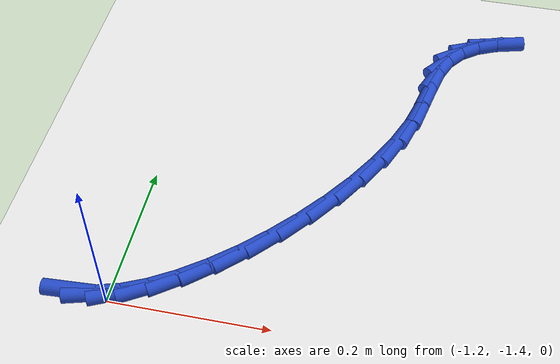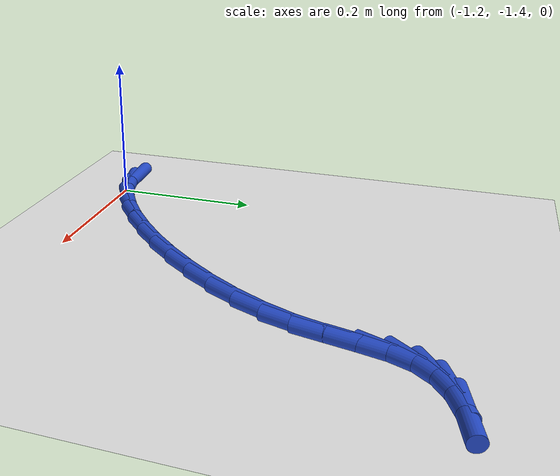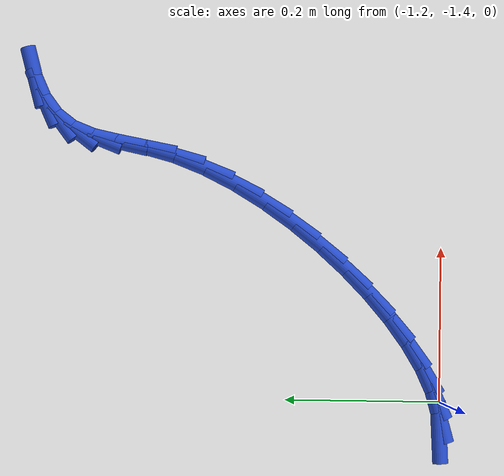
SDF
<sdf version="1.6">
 <world name="default">
  <model name="ground_plane">
   <static>1</static>
   <link name="link">
    <collision name="collision">
     <geometry><plane><normal>0 0 1</normal><size>100 100</size></plane></geometry>
     <surface><friction><ode><mu>100</mu><mu2>50</mu2></ode></friction></surface>
    </collision>
    <visual name="visual">
     <cast_shadows>0</cast_shadows>
     <geometry><plane><normal>0 0 1</normal><size>100 100</size></plane></geometry>
     <material>
      <script><uri>file://media/materials/scripts/gazebo.material</uri><name>Gazebo/WhiteGlow</name></script>
     </material>
    </visual>
   </link>
  </model>
  <model name="line">
   <link name="link_192">
    <pose>-1.2374455284732064 -1.398394351473527 0.01 0 1.57 0.05207027127656636</pose>
    <collision name="collision">
     <geometry><cylinder><radius>0.01</radius><length>0.08</length></cylinder></geometry>
    </collision>
    <visual name="visual">
     <material>
      <script><name>Gazebo/Blue</name><uri>file://media/materials/scripts/gazebo.material</uri></script>
     </material>
     <geometry><cylinder><radius>0.01</radius><length>0.08</length></cylinder></geometry>
    </visual>
   </link>
   <link name="link_193">
    <pose>-1.2124207993179812 -1.3970901281053552 0.01 0 1.57 0.2727909612681502</pose>
    <collision name="collision">
     <geometry><cylinder><radius>0.01</radius><length>0.08</length></cylinder></geometry>
    </collision>
    <visual name="visual">
     <material>
      <script><name>Gazebo/Blue</name><uri>file://media/materials/scripts/gazebo.material</uri></script>
     </material>
     <geometry><cylinder><radius>0.01</radius><length>0.08</length></cylinder></geometry>
    </visual>
   </link>
   <link name="link_194">
    <pose>-1.1847042785562583 -1.3893360100886227 0.01 0 1.57 0.42849916269306554</pose>
    <collision name="collision">
     <geometry><cylinder><radius>0.01</radius><length>0.08</length></cylinder></geometry>
    </collision>
    <visual name="visual">
     <material>
      <script><name>Gazebo/Blue</name><uri>file://media/materials/scripts/gazebo.material</uri></script>
     </material>
     <geometry><cylinder><radius>0.01</radius><length>0.08</length></cylinder></geometry>
    </visual>
   </link>
   <link name="link_195">
    <pose>-1.154936940377208 -1.3757381185987934 0.01 0 1.57 0.5434618516023377</pose>
    <collision name="collision">
     <geometry><cylinder><radius>0.01</radius><length>0.08</length></cylinder></geometry>
    </collision>
    <visual name="visual">
     <material>
      <script><name>Gazebo/Blue</name><uri>file://media/materials/scripts/gazebo.material</uri></script>
     </material>
     <geometry><cylinder><radius>0.01</radius><length>0.08</length></cylinder></geometry>
    </visual>
   </link>
   <link name="link_196">
    <pose>-1.1237597589700008 -1.35690257481133 0.01 0 1.57 0.6335619983867619</pose>
    <collision name="collision">
     <geometry><cylinder><radius>0.01</radius><length>0.08</length></cylinder></geometry>
    </collision>
    <visual name="visual">
     <material>
      <script><name>Gazebo/Blue</name><uri>file://media/materials/scripts/gazebo.material</uri></script>
     </material>
     <geometry><cylinder><radius>0.01</radius><length>0.08</length></cylinder></geometry>
    </visual>
   </link>
   <link name="link_197">
    <pose>-1.0918137085238069 -1.3334354999016957 0.01 0 1.57 0.7086358292031558</pose>
    <collision name="collision">
     <geometry><cylinder><radius>0.01</radius><length>0.08</length></cylinder></geometry>
    </collision>
    <visual name="visual">
     <material>
      <script><name>Gazebo/Blue</name><uri>file://media/materials/scripts/gazebo.material</uri></script>
     </material>
     <geometry><cylinder><radius>0.01</radius><length>0.08</length></cylinder></geometry>
    </visual>
   </link>
   <link name="link_198">
    <pose>-1.0597397632277958 -1.305943015045353 0.01 0 1.57 0.7750085115782224</pose>
    <collision name="collision">
     <geometry><cylinder><radius>0.01</radius><length>0.08</length></cylinder></geometry>
    </collision>
    <visual name="visual">
     <material>
      <script><name>Gazebo/Blue</name><uri>file://media/materials/scripts/gazebo.material</uri></script>
     </material>
     <geometry><cylinder><radius>0.01</radius><length>0.08</length></cylinder></geometry>
    </visual>
   </link>
   <link name="link_199">
    <pose>-1.0281788972711385 -1.2750312414177667 0.01 0 1.57 0.8370913189941717</pose>
    <collision name="collision">
     <geometry><cylinder><radius>0.01</radius><length>0.08</length></cylinder></geometry>
    </collision>
    <visual name="visual">
     <material>
      <script><name>Gazebo/Blue</name><uri>file://media/materials/scripts/gazebo.material</uri></script>
     </material>
     <geometry><cylinder><radius>0.01</radius><length>0.08</length></cylinder></geometry>
    </visual>
   </link>
   <link name="link_200">
    <pose>-0.9977720848430042 -1.2413063001943982 0.01 0 1.57 0.8983301542751334</pose>
    <collision name="collision">
     <geometry><cylinder><radius>0.01</radius><length>0.08</length></cylinder></geometry>
    </collision>
    <visual name="visual">
     <material>
      <script><name>Gazebo/Blue</name><uri>file://media/materials/scripts/gazebo.material</uri></script>
     </material>
     <geometry><cylinder><radius>0.01</radius><length>0.08</length></cylinder></geometry>
    </visual>
   </link>
   <link name="link_201">
    <pose>-0.9691603001325633 -1.205374312550711 0.01 0 1.57 0.9618115574121858</pose>
    <collision name="collision">
     <geometry><cylinder><radius>0.01</radius><length>0.08</length></cylinder></geometry>
    </collision>
    <visual name="visual">
     <material>
      <script><name>Gazebo/Blue</name><uri>file://media/materials/scripts/gazebo.material</uri></script>
     </material>
     <geometry><cylinder><radius>0.01</radius><length>0.08</length></cylinder></geometry>
    </visual>
   </link>
   <link name="link_202">
    <pose>-0.9429845173289862 -1.1678413996621684 0.01 0 1.57 1.030717053416394</pose>
    <collision name="collision">
     <geometry><cylinder><radius>0.01</radius><length>0.08</length></cylinder></geometry>
    </collision>
    <visual name="visual">
     <material>
      <script><name>Gazebo/Blue</name><uri>file://media/materials/scripts/gazebo.material</uri></script>
     </material>
     <geometry><cylinder><radius>0.01</radius><length>0.08</length></cylinder></geometry>
    </visual>
   </link>
   <link name="link_203">
    <pose>-0.919885710621443 -1.1293136827042338 0.01 0 1.57 1.1087399230094572</pose>
    <collision name="collision">
     <geometry><cylinder><radius>0.01</radius><length>0.08</length></cylinder></geometry>
    </collision>
    <visual name="visual">
     <material>
      <script><name>Gazebo/Blue</name><uri>file://media/materials/scripts/gazebo.material</uri></script>
     </material>
     <geometry><cylinder><radius>0.01</radius><length>0.08</length></cylinder></geometry>
    </visual>
   </link>
   <link name="link_204">
    <pose>-0.9005048541991034 -1.0903972828523696 0.01 0 1.57 1.2005261359376784</pose>
    <collision name="collision">
     <geometry><cylinder><radius>0.01</radius><length>0.08</length></cylinder></geometry>
    </collision>
    <visual name="visual">
     <material>
      <script><name>Gazebo/Blue</name><uri>file://media/materials/scripts/gazebo.material</uri></script>
     </material>
     <geometry><cylinder><radius>0.01</radius><length>0.08</length></cylinder></geometry>
    </visual>
   </link>
   <link name="link_205">
    <pose>-0.885482922251138 -1.0516983212820394 0.01 0 1.57 1.3094469678084262</pose>
    <collision name="collision">
     <geometry><cylinder><radius>0.01</radius><length>0.08</length></cylinder></geometry>
    </collision>
    <visual name="visual">
     <material>
      <script><name>Gazebo/Blue</name><uri>file://media/materials/scripts/gazebo.material</uri></script>
     </material>
     <geometry><cylinder><radius>0.01</radius><length>0.08</length></cylinder></geometry>
    </visual>
   </link>
   <link name="link_206">
    <pose>-0.875358684716764 -1.013846022125756 0.01 0 1.57 1.3840667150590527</pose>
    <collision name="collision">
     <geometry><cylinder><radius>0.01</radius><length>0.08</length></cylinder></geometry>
    </collision>
    <visual name="visual">
     <material>
      <script><name>Gazebo/Blue</name><uri>file://media/materials/scripts/gazebo.material</uri></script>
     </material>
     <geometry><cylinder><radius>0.01</radius><length>0.08</length></cylinder></geometry>
    </visual>
   </link>
   <link name="link_207">
    <pose>-0.8685755538181228 -0.9779432586975929 0.01 0 1.57 1.3592035517518397</pose>
    <collision name="collision">
     <geometry><cylinder><radius>0.01</radius><length>0.08</length></cylinder></geometry>
    </collision>
    <visual name="visual">
     <material>
      <script><name>Gazebo/Blue</name><uri>file://media/materials/scripts/gazebo.material</uri></script>
     </material>
     <geometry><cylinder><radius>0.01</radius><length>0.08</length></cylinder></geometry>
    </visual>
   </link>
   <link name="link_208">
    <pose>-0.8616143281921282 -0.9455365470895529 0.01 0 1.57 1.197687686934711</pose>
    <collision name="collision">
     <geometry><cylinder><radius>0.01</radius><length>0.08</length></cylinder></geometry>
    </collision>
    <visual name="visual">
     <material>
      <script><name>Gazebo/Blue</name><uri>file://media/materials/scripts/gazebo.material</uri></script>
     </material>
     <geometry><cylinder><radius>0.01</radius><length>0.08</length></cylinder></geometry>
    </visual>
   </link>
   <link name="link_209">
    <pose>-0.8509044156037887 -0.9181765200959146 0.01 0 1.57 0.9188690335780304</pose>
    <collision name="collision">
     <geometry><cylinder><radius>0.01</radius><length>0.08</length></cylinder></geometry>
    </collision>
    <visual name="visual">
     <material>
      <script><name>Gazebo/Blue</name><uri>file://media/materials/scripts/gazebo.material</uri></script>
     </material>
     <geometry><cylinder><radius>0.01</radius><length>0.08</length></cylinder></geometry>
    </visual>
   </link>
   <link name="link_210">
    <pose>-0.8344241049177641 -0.8965842351136613 0.01 0 1.57 0.6452021009489133</pose>
    <collision name="collision">
     <geometry><cylinder><radius>0.01</radius><length>0.08</length></cylinder></geometry>
    </collision>
    <visual name="visual">
     <material>
      <script><name>Gazebo/Blue</name><uri>file://media/materials/scripts/gazebo.material</uri></script>
     </material>
     <geometry><cylinder><radius>0.01</radius><length>0.08</length></cylinder></geometry>
    </visual>
   </link>
   <link name="link_211">
    <pose>-0.8126088198722822 -0.8801647165406042 0.01 0 1.57 0.42395202236070906</pose>
    <collision name="collision">
     <geometry><cylinder><radius>0.01</radius><length>0.08</length></cylinder></geometry>
    </collision>
    <visual name="visual">
     <material>
      <script><name>Gazebo/Blue</name><uri>file://media/materials/scripts/gazebo.material</uri></script>
     </material>
     <geometry><cylinder><radius>0.01</radius><length>0.08</length></cylinder></geometry>
    </visual>
   </link>
   <link name="link_212">
    <pose>-0.7861120790209382 -0.8682061779404956 0.01 0 1.57 0.2627247596813645</pose>
    <collision name="collision">
     <geometry><cylinder><radius>0.01</radius><length>0.08</length></cylinder></geometry>
    </collision>
    <visual name="visual">
     <material>
      <script><name>Gazebo/Blue</name><uri>file://media/materials/scripts/gazebo.material</uri></script>
     </material>
     <geometry><cylinder><radius>0.01</radius><length>0.08</length></cylinder></geometry>
    </visual>
   </link>
  </model>
 </world>
</sdf>
